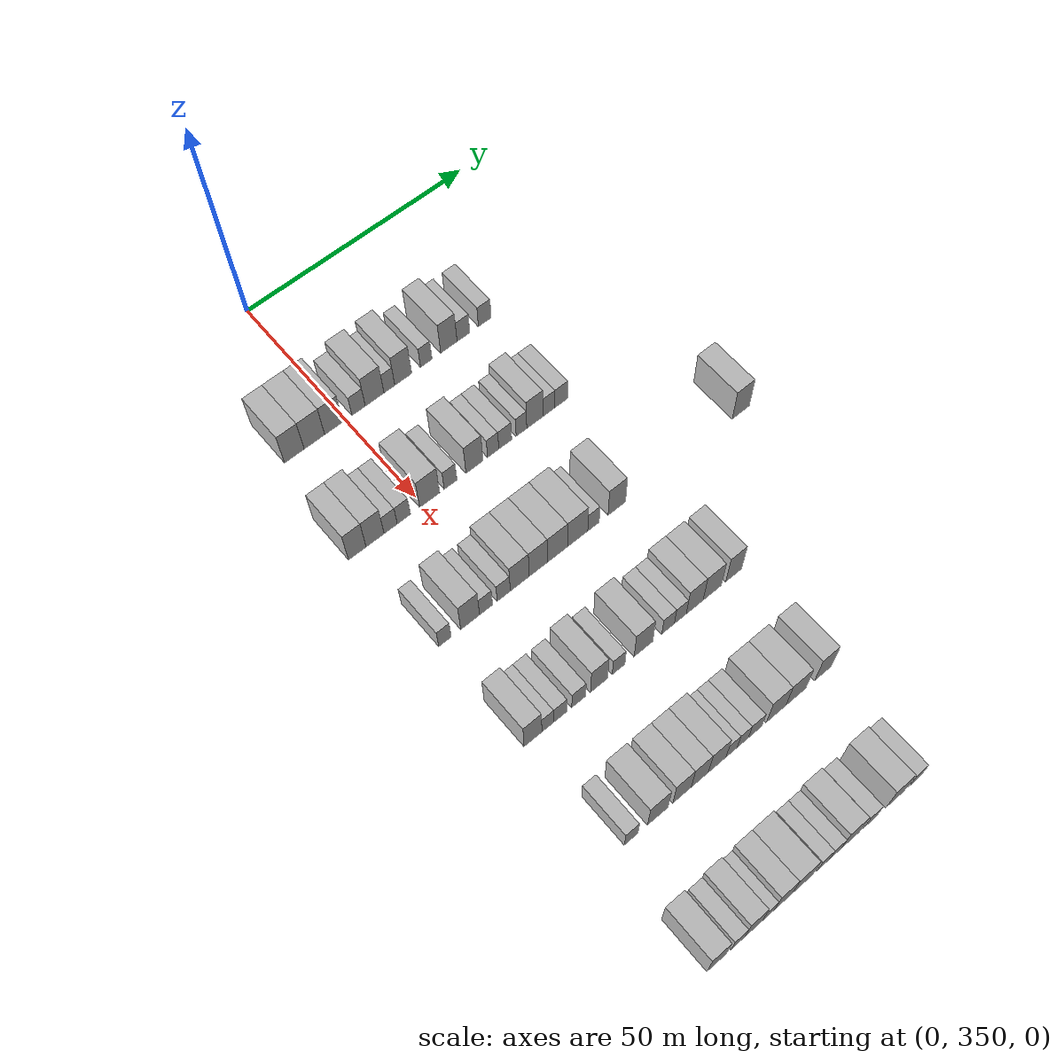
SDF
<sdf version="1.6">
 <world name="default">
  <model name="building_178">
   <static>1</static>
   <pose>25.0000 338.9166 0 0.000000 0.000000 0.000000</pose>
   <link name="link">
    <pose>0 0 4.50 0 0 0</pose>
    <collision name="collision"><geometry><box><size>10.0000 4.2122 9.0000</size></box></geometry></collision>
    <visual name="visual">
     <cast_shadows>0</cast_shadows>
     <geometry><box><size>10.0000 4.2122 9.0000</size></box></geometry>
     <material>
      <script>
       <uri>model://HANNAS_wall/materials/scripts</uri>
       <uri>model://HANNAS_wall/materials/textures</uri>
       <name>vrc/HANNAS_wall</name>
      </script>
     </material>
    </visual>
   </link>
  </model>
  <model name="building_179">
   <static>1</static>
   <pose>25.0000 343.2358 0 0.000000 0.000000 0.000000</pose>
   <link name="link">
    <pose>0 0 4.50 0 0 0</pose>
    <collision name="collision"><geometry><box><size>10.0000 4.4262 9.0000</size></box></geometry></collision>
    <visual name="visual">
     <cast_shadows>0</cast_shadows>
     <geometry><box><size>10.0000 4.4262 9.0000</size></box></geometry>
     <material>
      <script>
       <uri>model://HANNAS_wall/materials/scripts</uri>
       <uri>model://HANNAS_wall/materials/textures</uri>
       <name>vrc/HANNAS_wall</name>
      </script>
     </material>
    </visual>
   </link>
  </model>
  <model name="building_180">
   <static>1</static>
   <pose>25.0000 347.4312 0 0.000000 0.000000 0.000000</pose>
   <link name="link">
    <pose>0 0 4.50 0 0 0</pose>
    <collision name="collision"><geometry><box><size>10.0000 3.9647 9.0000</size></box></geometry></collision>
    <visual name="visual">
     <cast_shadows>0</cast_shadows>
     <geometry><box><size>10.0000 3.9647 9.0000</size></box></geometry>
     <material>
      <script>
       <uri>model://HANNAS_wall/materials/scripts</uri>
       <uri>model://HANNAS_wall/materials/textures</uri>
       <name>vrc/HANNAS_wall</name>
      </script>
     </material>
    </visual>
   </link>
  </model>
  <model name="building_181">
   <static>1</static>
   <pose>25.0000 352.8886 0 0.000000 0.000000 0.000000</pose>
   <link name="link">
    <pose>0 0 3.00 0 0 0</pose>
    <collision name="collision"><geometry><box><size>10.0000 2.9501 6.0000</size></box></geometry></collision>
    <visual name="visual">
     <cast_shadows>0</cast_shadows>
     <geometry><box><size>10.0000 2.9501 6.0000</size></box></geometry>
     <material>
      <script>
       <uri>model://HANNAS_wall/materials/scripts</uri>
       <uri>model://HANNAS_wall/materials/textures</uri>
       <name>vrc/HANNAS_wall</name>
      </script>
     </material>
    </visual>
   </link>
  </model>
  <model name="building_182">
   <static>1</static>
   <pose>25.0000 356.4411 0 0.000000 0.000000 0.000000</pose>
   <link name="link">
    <pose>0 0 4.50 0 0 0</pose>
    <collision name="collision"><geometry><box><size>10.0000 4.1549 9.0000</size></box></geometry></collision>
    <visual name="visual">
     <cast_shadows>0</cast_shadows>
     <geometry><box><size>10.0000 4.1549 9.0000</size></box></geometry>
     <material>
      <script>
       <uri>model://HANNAS_wall/materials/scripts</uri>
       <uri>model://HANNAS_wall/materials/textures</uri>
       <name>vrc/HANNAS_wall</name>
      </script>
     </material>
    </visual>
   </link>
  </model>
  <model name="building_183">
   <static>1</static>
   <pose>25.0000 359.7363 0 0.000000 0.000000 0.000000</pose>
   <link name="link">
    <pose>0 0 3.00 0 0 0</pose>
    <collision name="collision"><geometry><box><size>10.0000 2.4354 6.0000</size></box></geometry></collision>
    <visual name="visual">
     <cast_shadows>0</cast_shadows>
     <geometry><box><size>10.0000 2.4354 6.0000</size></box></geometry>
     <material>
      <script>
       <uri>model://HANNAS_wall/materials/scripts</uri>
       <uri>model://HANNAS_wall/materials/textures</uri>
       <name>vrc/HANNAS_wall</name>
      </script>
     </material>
    </visual>
   </link>
  </model>
  <model name="building_184">
   <static>1</static>
   <pose>25.0000 362.8602 0 0.000000 0.000000 0.000000</pose>
   <link name="link">
    <pose>0 0 4.50 0 0 0</pose>
    <collision name="collision"><geometry><box><size>10.0000 3.8124 9.0000</size></box></geometry></collision>
    <visual name="visual">
     <cast_shadows>0</cast_shadows>
     <geometry><box><size>10.0000 3.8124 9.0000</size></box></geometry>
     <material>
      <script>
       <uri>model://HANNAS_wall/materials/scripts</uri>
       <uri>model://HANNAS_wall/materials/textures</uri>
       <name>vrc/HANNAS_wall</name>
      </script>
     </material>
    </visual>
   </link>
  </model>
  <model name="building_185">
   <static>1</static>
   <pose>25.0000 368.0725 0 0.000000 0.000000 0.000000</pose>
   <link name="link">
    <pose>0 0 3.00 0 0 0</pose>
    <collision name="collision"><geometry><box><size>10.0000 2.6123 6.0000</size></box></geometry></collision>
    <visual name="visual">
     <cast_shadows>0</cast_shadows>
     <geometry><box><size>10.0000 2.6123 6.0000</size></box></geometry>
     <material>
      <script>
       <uri>model://HANNAS_wall/materials/scripts</uri>
       <uri>model://HANNAS_wall/materials/textures</uri>
       <name>vrc/HANNAS_wall</name>
      </script>
     </material>
    </visual>
   </link>
  </model>
  <model name="building_186">
   <static>1</static>
   <pose>25.0000 373.2752 0 0.000000 0.000000 0.000000</pose>
   <link name="link">
    <pose>0 0 4.50 0 0 0</pose>
    <collision name="collision"><geometry><box><size>10.0000 3.7930 9.0000</size></box></geometry></collision>
    <visual name="visual">
     <cast_shadows>0</cast_shadows>
     <geometry><box><size>10.0000 3.7930 9.0000</size></box></geometry>
     <material>
      <script>
       <uri>model://HANNAS_wall/materials/scripts</uri>
       <uri>model://HANNAS_wall/materials/textures</uri>
       <name>vrc/HANNAS_wall</name>
      </script>
     </material>
    </visual>
   </link>
  </model>
  <model name="building_187">
   <static>1</static>
   <pose>25.0000 376.6442 0 0.000000 0.000000 0.000000</pose>
   <link name="link">
    <pose>0 0 3.00 0 0 0</pose>
    <collision name="collision"><geometry><box><size>10.0000 2.9451 6.0000</size></box></geometry></collision>
    <visual name="visual">
     <cast_shadows>0</cast_shadows>
     <geometry><box><size>10.0000 2.9451 6.0000</size></box></geometry>
     <material>
      <script>
       <uri>model://HANNAS_wall/materials/scripts</uri>
       <uri>model://HANNAS_wall/materials/textures</uri>
       <name>vrc/HANNAS_wall</name>
      </script>
     </material>
    </visual>
   </link>
  </model>
  <model name="building_188">
   <static>1</static>
   <pose>25.0000 381.6117 0 0.000000 0.000000 0.000000</pose>
   <link name="link">
    <pose>0 0 3.00 0 0 0</pose>
    <collision name="collision"><geometry><box><size>10.0000 2.9899 6.0000</size></box></geometry></collision>
    <visual name="visual">
     <cast_shadows>0</cast_shadows>
     <geometry><box><size>10.0000 2.9899 6.0000</size></box></geometry>
     <material>
      <script>
       <uri>model://HANNAS_wall/materials/scripts</uri>
       <uri>model://HANNAS_wall/materials/textures</uri>
       <name>vrc/HANNAS_wall</name>
      </script>
     </material>
    </visual>
   </link>
  </model>
  <model name="building_356">
   <static>1</static>
   <pose>47.0000 336.0491 0 0.000000 0.000000 0.000000</pose>
   <link name="link">
    <pose>0 0 4.50 0 0 0</pose>
    <collision name="collision"><geometry><box><size>10.0000 3.7112 9.0000</size></box></geometry></collision>
    <visual name="visual">
     <cast_shadows>0</cast_shadows>
     <geometry><box><size>10.0000 3.7112 9.0000</size></box></geometry>
     <material>
      <script>
       <uri>model://HANNAS_wall/materials/scripts</uri>
       <uri>model://HANNAS_wall/materials/textures</uri>
       <name>vrc/HANNAS_wall</name>
      </script>
     </material>
    </visual>
   </link>
  </model>
  <model name="building_357">
   <static>1</static>
   <pose>47.0000 339.8124 0 0.000000 0.000000 0.000000</pose>
   <link name="link">
    <pose>0 0 4.50 0 0 0</pose>
    <collision name="collision"><geometry><box><size>10.0000 3.8154 9.0000</size></box></geometry></collision>
    <visual name="visual">
     <cast_shadows>0</cast_shadows>
     <geometry><box><size>10.0000 3.8154 9.0000</size></box></geometry>
     <material>
      <script>
       <uri>model://HANNAS_wall/materials/scripts</uri>
       <uri>model://HANNAS_wall/materials/textures</uri>
       <name>vrc/HANNAS_wall</name>
      </script>
     </material>
    </visual>
   </link>
  </model>
  <model name="building_358">
   <static>1</static>
   <pose>47.0000 343.1303 0 0.000000 0.000000 0.000000</pose>
   <link name="link">
    <pose>0 0 3.00 0 0 0</pose>
    <collision name="collision"><geometry><box><size>10.0000 2.8204 6.0000</size></box></geometry></collision>
    <visual name="visual">
     <cast_shadows>0</cast_shadows>
     <geometry><box><size>10.0000 2.8204 6.0000</size></box></geometry>
     <material>
      <script>
       <uri>model://HANNAS_wall/materials/scripts</uri>
       <uri>model://HANNAS_wall/materials/textures</uri>
       <name>vrc/HANNAS_wall</name>
      </script>
     </material>
    </visual>
   </link>
  </model>
  <model name="building_359">
   <static>1</static>
   <pose>47.0000 345.9557 0 0.000000 0.000000 0.000000</pose>
   <link name="link">
    <pose>0 0 3.00 0 0 0</pose>
    <collision name="collision"><geometry><box><size>10.0000 2.8305 6.0000</size></box></geometry></collision>
    <visual name="visual">
     <cast_shadows>0</cast_shadows>
     <geometry><box><size>10.0000 2.8305 6.0000</size></box></geometry>
     <material>
      <script>
       <uri>model://HANNAS_wall/materials/scripts</uri>
       <uri>model://HANNAS_wall/materials/textures</uri>
       <name>vrc/HANNAS_wall</name>
      </script>
     </material>
    </visual>
   </link>
  </model>
  <model name="building_360">
   <static>1</static>
   <pose>47.0000 351.5461 0 0.000000 0.000000 0.000000</pose>
   <link name="link">
    <pose>0 0 4.50 0 0 0</pose>
    <collision name="collision"><geometry><box><size>10.0000 4.3503 9.0000</size></box></geometry></collision>
    <visual name="visual">
     <cast_shadows>0</cast_shadows>
     <geometry><box><size>10.0000 4.3503 9.0000</size></box></geometry>
     <material>
      <script>
       <uri>model://HANNAS_wall/materials/scripts</uri>
       <uri>model://HANNAS_wall/materials/textures</uri>
       <name>vrc/HANNAS_wall</name>
      </script>
     </material>
    </visual>
   </link>
  </model>
  <model name="building_361">
   <static>1</static>
   <pose>47.0000 356.1222 0 0.000000 0.000000 0.000000</pose>
   <link name="link">
    <pose>0 0 3.00 0 0 0</pose>
    <collision name="collision"><geometry><box><size>10.0000 2.8019 6.0000</size></box></geometry></collision>
    <visual name="visual">
     <cast_shadows>0</cast_shadows>
     <geometry><box><size>10.0000 2.8019 6.0000</size></box></geometry>
     <material>
      <script>
       <uri>model://HANNAS_wall/materials/scripts</uri>
       <uri>model://HANNAS_wall/materials/textures</uri>
       <name>vrc/HANNAS_wall</name>
      </script>
     </material>
    </visual>
   </link>
  </model>
  <model name="building_362">
   <static>1</static>
   <pose>47.0000 361.4296 0 0.000000 0.000000 0.000000</pose>
   <link name="link">
    <pose>0 0 4.50 0 0 0</pose>
    <collision name="collision"><geometry><box><size>10.0000 3.8129 9.0000</size></box></geometry></collision>
    <visual name="visual">
     <cast_shadows>0</cast_shadows>
     <geometry><box><size>10.0000 3.8129 9.0000</size></box></geometry>
     <material>
      <script>
       <uri>model://HANNAS_wall/materials/scripts</uri>
       <uri>model://HANNAS_wall/materials/textures</uri>
       <name>vrc/HANNAS_wall</name>
      </script>
     </material>
    </visual>
   </link>
  </model>
  <model name="building_363">
   <static>1</static>
   <pose>47.0000 365.6028 0 0.000000 0.000000 0.000000</pose>
   <link name="link">
    <pose>0 0 3.00 0 0 0</pose>
    <collision name="collision"><geometry><box><size>10.0000 2.5336 6.0000</size></box></geometry></collision>
    <visual name="visual">
     <cast_shadows>0</cast_shadows>
     <geometry><box><size>10.0000 2.5336 6.0000</size></box></geometry>
     <material>
      <script>
       <uri>model://HANNAS_wall/materials/scripts</uri>
       <uri>model://HANNAS_wall/materials/textures</uri>
       <name>vrc/HANNAS_wall</name>
      </script>
     </material>
    </visual>
   </link>
  </model>
  <model name="building_364">
   <static>1</static>
   <pose>47.0000 368.3241 0 0.000000 0.000000 0.000000</pose>
   <link name="link">
    <pose>0 0 3.00 0 0 0</pose>
    <collision name="collision"><geometry><box><size>10.0000 2.9088 6.0000</size></box></geometry></collision>
    <visual name="visual">
     <cast_shadows>0</cast_shadows>
     <geometry><box><size>10.0000 2.9088 6.0000</size></box></geometry>
     <material>
      <script>
       <uri>model://HANNAS_wall/materials/scripts</uri>
       <uri>model://HANNAS_wall/materials/textures</uri>
       <name>vrc/HANNAS_wall</name>
      </script>
     </material>
    </visual>
   </link>
  </model>
  <model name="building_365">
   <static>1</static>
   <pose>47.0000 371.9936 0 0.000000 0.000000 0.000000</pose>
   <link name="link">
    <pose>0 0 3.00 0 0 0</pose>
    <collision name="collision"><geometry><box><size>10.0000 2.4302 6.0000</size></box></geometry></collision>
    <visual name="visual">
     <cast_shadows>0</cast_shadows>
     <geometry><box><size>10.0000 2.4302 6.0000</size></box></geometry>
     <material>
      <script>
       <uri>model://HANNAS_wall/materials/scripts</uri>
       <uri>model://HANNAS_wall/materials/textures</uri>
       <name>vrc/HANNAS_wall</name>
      </script>
     </material>
    </visual>
   </link>
  </model>
  <model name="building_366">
   <static>1</static>
   <pose>47.0000 375.0825 0 0.000000 0.000000 0.000000</pose>
   <link name="link">
    <pose>0 0 4.50 0 0 0</pose>
    <collision name="collision"><geometry><box><size>10.0000 3.7476 9.0000</size></box></geometry></collision>
    <visual name="visual">
     <cast_shadows>0</cast_shadows>
     <geometry><box><size>10.0000 3.7476 9.0000</size></box></geometry>
     <material>
      <script>
       <uri>model://HANNAS_wall/materials/scripts</uri>
       <uri>model://HANNAS_wall/materials/textures</uri>
       <name>vrc/HANNAS_wall</name>
      </script>
     </material>
    </visual>
   </link>
  </model>
  <model name="building_367">
   <static>1</static>
   <pose>47.0000 378.3202 0 0.000000 0.000000 0.000000</pose>
   <link name="link">
    <pose>0 0 3.00 0 0 0</pose>
    <collision name="collision"><geometry><box><size>10.0000 2.7280 6.0000</size></box></geometry></collision>
    <visual name="visual">
     <cast_shadows>0</cast_shadows>
     <geometry><box><size>10.0000 2.7280 6.0000</size></box></geometry>
     <material>
      <script>
       <uri>model://HANNAS_wall/materials/scripts</uri>
       <uri>model://HANNAS_wall/materials/textures</uri>
       <name>vrc/HANNAS_wall</name>
      </script>
     </material>
    </visual>
   </link>
  </model>
  <model name="building_368">
   <static>1</static>
   <pose>47.0000 381.1518 0 0.000000 0.000000 0.000000</pose>
   <link name="link">
    <pose>0 0 3.00 0 0 0</pose>
    <collision name="collision"><geometry><box><size>10.0000 2.9352 6.0000</size></box></geometry></collision>
    <visual name="visual">
     <cast_shadows>0</cast_shadows>
     <geometry><box><size>10.0000 2.9352 6.0000</size></box></geometry>
     <material>
      <script>
       <uri>model://HANNAS_wall/materials/scripts</uri>
       <uri>model://HANNAS_wall/materials/textures</uri>
       <name>vrc/HANNAS_wall</name>
      </script>
     </material>
    </visual>
   </link>
  </model>
  <model name="building_543">
   <static>1</static>
   <pose>69.0000 337.4171 0 0.000000 0.000000 0.000000</pose>
   <link name="link">
    <pose>0 0 3.00 0 0 0</pose>
    <collision name="collision"><geometry><box><size>10.0000 2.6005 6.0000</size></box></geometry></collision>
    <visual name="visual">
     <cast_shadows>0</cast_shadows>
     <geometry><box><size>10.0000 2.6005 6.0000</size></box></geometry>
     <material>
      <script>
       <uri>model://HANNAS_wall/materials/scripts</uri>
       <uri>model://HANNAS_wall/materials/textures</uri>
       <name>vrc/HANNAS_wall</name>
      </script>
     </material>
    </visual>
   </link>
  </model>
  <model name="building_544">
   <static>1</static>
   <pose>69.0000 342.7054 0 0.000000 0.000000 0.000000</pose>
   <link name="link">
    <pose>0 0 4.50 0 0 0</pose>
    <collision name="collision"><geometry><box><size>10.0000 3.9762 9.0000</size></box></geometry></collision>
    <visual name="visual">
     <cast_shadows>0</cast_shadows>
     <geometry><box><size>10.0000 3.9762 9.0000</size></box></geometry>
     <material>
      <script>
       <uri>model://HANNAS_wall/materials/scripts</uri>
       <uri>model://HANNAS_wall/materials/textures</uri>
       <name>vrc/HANNAS_wall</name>
      </script>
     </material>
    </visual>
   </link>
  </model>
  <model name="building_545">
   <static>1</static>
   <pose>69.0000 346.0716 0 0.000000 0.000000 0.000000</pose>
   <link name="link">
    <pose>0 0 3.00 0 0 0</pose>
    <collision name="collision"><geometry><box><size>10.0000 2.7561 6.0000</size></box></geometry></collision>
    <visual name="visual">
     <cast_shadows>0</cast_shadows>
     <geometry><box><size>10.0000 2.7561 6.0000</size></box></geometry>
     <material>
      <script>
       <uri>model://HANNAS_wall/materials/scripts</uri>
       <uri>model://HANNAS_wall/materials/textures</uri>
       <name>vrc/HANNAS_wall</name>
      </script>
     </material>
    </visual>
   </link>
  </model>
  <model name="building_546">
   <static>1</static>
   <pose>69.0000 349.8646 0 0.000000 0.000000 0.000000</pose>
   <link name="link">
    <pose>0 0 3.00 0 0 0</pose>
    <collision name="collision"><geometry><box><size>10.0000 2.8299 6.0000</size></box></geometry></collision>
    <visual name="visual">
     <cast_shadows>0</cast_shadows>
     <geometry><box><size>10.0000 2.8299 6.0000</size></box></geometry>
     <material>
      <script>
       <uri>model://HANNAS_wall/materials/scripts</uri>
       <uri>model://HANNAS_wall/materials/textures</uri>
       <name>vrc/HANNAS_wall</name>
      </script>
     </material>
    </visual>
   </link>
  </model>
  <model name="building_547">
   <static>1</static>
   <pose>69.0000 353.3275 0 0.000000 0.000000 0.000000</pose>
   <link name="link">
    <pose>0 0 4.50 0 0 0</pose>
    <collision name="collision"><geometry><box><size>10.0000 4.0960 9.0000</size></box></geometry></collision>
    <visual name="visual">
     <cast_shadows>0</cast_shadows>
     <geometry><box><size>10.0000 4.0960 9.0000</size></box></geometry>
     <material>
      <script>
       <uri>model://HANNAS_wall/materials/scripts</uri>
       <uri>model://HANNAS_wall/materials/textures</uri>
       <name>vrc/HANNAS_wall</name>
      </script>
     </material>
    </visual>
   </link>
  </model>
  <model name="building_548">
   <static>1</static>
   <pose>69.0000 357.4074 0 0.000000 0.000000 0.000000</pose>
   <link name="link">
    <pose>0 0 4.50 0 0 0</pose>
    <collision name="collision"><geometry><box><size>10.0000 4.0638 9.0000</size></box></geometry></collision>
    <visual name="visual">
     <cast_shadows>0</cast_shadows>
     <geometry><box><size>10.0000 4.0638 9.0000</size></box></geometry>
     <material>
      <script>
       <uri>model://HANNAS_wall/materials/scripts</uri>
       <uri>model://HANNAS_wall/materials/textures</uri>
       <name>vrc/HANNAS_wall</name>
      </script>
     </material>
    </visual>
   </link>
  </model>
  <model name="building_549">
   <static>1</static>
   <pose>69.0000 361.6377 0 0.000000 0.000000 0.000000</pose>
   <link name="link">
    <pose>0 0 4.50 0 0 0</pose>
    <collision name="collision"><geometry><box><size>10.0000 4.3967 9.0000</size></box></geometry></collision>
    <visual name="visual">
     <cast_shadows>0</cast_shadows>
     <geometry><box><size>10.0000 4.3967 9.0000</size></box></geometry>
     <material>
      <script>
       <uri>model://HANNAS_wall/materials/scripts</uri>
       <uri>model://HANNAS_wall/materials/textures</uri>
       <name>vrc/HANNAS_wall</name>
      </script>
     </material>
    </visual>
   </link>
  </model>
  <model name="building_550">
   <static>1</static>
   <pose>69.0000 366.0727 0 0.000000 0.000000 0.000000</pose>
   <link name="link">
    <pose>0 0 4.50 0 0 0</pose>
    <collision name="collision"><geometry><box><size>10.0000 4.4732 9.0000</size></box></geometry></collision>
    <visual name="visual">
     <cast_shadows>0</cast_shadows>
     <geometry><box><size>10.0000 4.4732 9.0000</size></box></geometry>
     <material>
      <script>
       <uri>model://HANNAS_wall/materials/scripts</uri>
       <uri>model://HANNAS_wall/materials/textures</uri>
       <name>vrc/HANNAS_wall</name>
      </script>
     </material>
    </visual>
   </link>
  </model>
  <model name="building_551">
   <static>1</static>
   <pose>69.0000 369.5935 0 0.000000 0.000000 0.000000</pose>
   <link name="link">
    <pose>0 0 3.00 0 0 0</pose>
    <collision name="collision"><geometry><box><size>10.0000 2.5682 6.0000</size></box></geometry></collision>
    <visual name="visual">
     <cast_shadows>0</cast_shadows>
     <geometry><box><size>10.0000 2.5682 6.0000</size></box></geometry>
     <material>
      <script>
       <uri>model://HANNAS_wall/materials/scripts</uri>
       <uri>model://HANNAS_wall/materials/textures</uri>
       <name>vrc/HANNAS_wall</name>
      </script>
     </material>
    </visual>
   </link>
  </model>
  <model name="building_552">
   <static>1</static>
   <pose>69.0000 374.8669 0 0.000000 0.000000 0.000000</pose>
   <link name="link">
    <pose>0 0 4.50 0 0 0</pose>
    <collision name="collision"><geometry><box><size>10.0000 3.9787 9.0000</size></box></geometry></collision>
    <visual name="visual">
     <cast_shadows>0</cast_shadows>
     <geometry><box><size>10.0000 3.9787 9.0000</size></box></geometry>
     <material>
      <script>
       <uri>model://HANNAS_wall/materials/scripts</uri>
       <uri>model://HANNAS_wall/materials/textures</uri>
       <name>vrc/HANNAS_wall</name>
      </script>
     </material>
    </visual>
   </link>
  </model>
  <model name="building_553">
   <static>1</static>
   <pose>69.0000 404.0630 0 0.000000 0.000000 0.000000</pose>
   <link name="link">
    <pose>0 0 4.50 0 0 0</pose>
    <collision name="collision"><geometry><box><size>10.0000 4.1378 9.0000</size></box></geometry></collision>
    <visual name="visual">
     <cast_shadows>0</cast_shadows>
     <geometry><box><size>10.0000 4.1378 9.0000</size></box></geometry>
     <material>
      <script>
       <uri>model://HANNAS_wall/materials/scripts</uri>
       <uri>model://HANNAS_wall/materials/textures</uri>
       <name>vrc/HANNAS_wall</name>
      </script>
     </material>
    </visual>
   </link>
  </model>
  <model name="building_742">
   <static>1</static>
   <pose>91.0000 337.7596 0 0.000000 0.000000 0.000000</pose>
   <link name="link">
    <pose>0 0 4.50 0 0 0</pose>
    <collision name="collision"><geometry><box><size>10.0000 3.6984 9.0000</size></box></geometry></collision>
    <visual name="visual">
     <cast_shadows>0</cast_shadows>
     <geometry><box><size>10.0000 3.6984 9.0000</size></box></geometry>
     <material>
      <script>
       <uri>model://HANNAS_wall/materials/scripts</uri>
       <uri>model://HANNAS_wall/materials/textures</uri>
       <name>vrc/HANNAS_wall</name>
      </script>
     </material>
    </visual>
   </link>
  </model>
  <model name="building_743">
   <static>1</static>
   <pose>91.0000 340.8476 0 0.000000 0.000000 0.000000</pose>
   <link name="link">
    <pose>0 0 3.00 0 0 0</pose>
    <collision name="collision"><geometry><box><size>10.0000 2.4774 6.0000</size></box></geometry></collision>
    <visual name="visual">
     <cast_shadows>0</cast_shadows>
     <geometry><box><size>10.0000 2.4774 6.0000</size></box></geometry>
     <material>
      <script>
       <uri>model://HANNAS_wall/materials/scripts</uri>
       <uri>model://HANNAS_wall/materials/textures</uri>
       <name>vrc/HANNAS_wall</name>
      </script>
     </material>
    </visual>
   </link>
  </model>
  <model name="building_744">
   <static>1</static>
   <pose>91.0000 343.4697 0 0.000000 0.000000 0.000000</pose>
   <link name="link">
    <pose>0 0 3.00 0 0 0</pose>
    <collision name="collision"><geometry><box><size>10.0000 2.7669 6.0000</size></box></geometry></collision>
    <visual name="visual">
     <cast_shadows>0</cast_shadows>
     <geometry><box><size>10.0000 2.7669 6.0000</size></box></geometry>
     <material>
      <script>
       <uri>model://HANNAS_wall/materials/scripts</uri>
       <uri>model://HANNAS_wall/materials/textures</uri>
       <name>vrc/HANNAS_wall</name>
      </script>
     </material>
    </visual>
   </link>
  </model>
  <model name="building_745">
   <static>1</static>
   <pose>91.0000 347.3351 0 0.000000 0.000000 0.000000</pose>
   <link name="link">
    <pose>0 0 3.00 0 0 0</pose>
    <collision name="collision"><geometry><box><size>10.0000 2.9640 6.0000</size></box></geometry></collision>
    <visual name="visual">
     <cast_shadows>0</cast_shadows>
     <geometry><box><size>10.0000 2.9640 6.0000</size></box></geometry>
     <material>
      <script>
       <uri>model://HANNAS_wall/materials/scripts</uri>
       <uri>model://HANNAS_wall/materials/textures</uri>
       <name>vrc/HANNAS_wall</name>
      </script>
     </material>
    </visual>
   </link>
  </model>
  <model name="building_746">
   <static>1</static>
   <pose>91.0000 351.6450 0 0.000000 0.000000 0.000000</pose>
   <link name="link">
    <pose>0 0 4.50 0 0 0</pose>
    <collision name="collision"><geometry><box><size>10.0000 3.6558 9.0000</size></box></geometry></collision>
    <visual name="visual">
     <cast_shadows>0</cast_shadows>
     <geometry><box><size>10.0000 3.6558 9.0000</size></box></geometry>
     <material>
      <script>
       <uri>model://HANNAS_wall/materials/scripts</uri>
       <uri>model://HANNAS_wall/materials/textures</uri>
       <name>vrc/HANNAS_wall</name>
      </script>
     </material>
    </visual>
   </link>
  </model>
  <model name="building_747">
   <static>1</static>
   <pose>91.0000 355.8470 0 0.000000 0.000000 0.000000</pose>
   <link name="link">
    <pose>0 0 3.00 0 0 0</pose>
    <collision name="collision"><geometry><box><size>10.0000 2.7481 6.0000</size></box></geometry></collision>
    <visual name="visual">
     <cast_shadows>0</cast_shadows>
     <geometry><box><size>10.0000 2.7481 6.0000</size></box></geometry>
     <material>
      <script>
       <uri>model://HANNAS_wall/materials/scripts</uri>
       <uri>model://HANNAS_wall/materials/textures</uri>
       <name>vrc/HANNAS_wall</name>
      </script>
     </material>
    </visual>
   </link>
  </model>
  <model name="building_748">
   <static>1</static>
   <pose>91.0000 361.2587 0 0.000000 0.000000 0.000000</pose>
   <link name="link">
    <pose>0 0 4.50 0 0 0</pose>
    <collision name="collision"><geometry><box><size>10.0000 4.0752 9.0000</size></box></geometry></collision>
    <visual name="visual">
     <cast_shadows>0</cast_shadows>
     <geometry><box><size>10.0000 4.0752 9.0000</size></box></geometry>
     <material>
      <script>
       <uri>model://HANNAS_wall/materials/scripts</uri>
       <uri>model://HANNAS_wall/materials/textures</uri>
       <name>vrc/HANNAS_wall</name>
      </script>
     </material>
    </visual>
   </link>
  </model>
  <model name="building_749">
   <static>1</static>
   <pose>91.0000 366.6951 0 0.000000 0.000000 0.000000</pose>
   <link name="link">
    <pose>0 0 3.00 0 0 0</pose>
    <collision name="collision"><geometry><box><size>10.0000 2.7977 6.0000</size></box></geometry></collision>
    <visual name="visual">
     <cast_shadows>0</cast_shadows>
     <geometry><box><size>10.0000 2.7977 6.0000</size></box></geometry>
     <material>
      <script>
       <uri>model://HANNAS_wall/materials/scripts</uri>
       <uri>model://HANNAS_wall/materials/textures</uri>
       <name>vrc/HANNAS_wall</name>
      </script>
     </material>
    </visual>
   </link>
  </model>
  <model name="building_750">
   <static>1</static>
   <pose>91.0000 369.4198 0 0.000000 0.000000 0.000000</pose>
   <link name="link">
    <pose>0 0 3.00 0 0 0</pose>
    <collision name="collision"><geometry><box><size>10.0000 2.6517 6.0000</size></box></geometry></collision>
    <visual name="visual">
     <cast_shadows>0</cast_shadows>
     <geometry><box><size>10.0000 2.6517 6.0000</size></box></geometry>
     <material>
      <script>
       <uri>model://HANNAS_wall/materials/scripts</uri>
       <uri>model://HANNAS_wall/materials/textures</uri>
       <name>vrc/HANNAS_wall</name>
      </script>
     </material>
    </visual>
   </link>
  </model>
  <model name="building_751">
   <static>1</static>
   <pose>91.0000 372.6509 0 0.000000 0.000000 0.000000</pose>
   <link name="link">
    <pose>0 0 4.50 0 0 0</pose>
    <collision name="collision"><geometry><box><size>10.0000 3.8104 9.0000</size></box></geometry></collision>
    <visual name="visual">
     <cast_shadows>0</cast_shadows>
     <geometry><box><size>10.0000 3.8104 9.0000</size></box></geometry>
     <material>
      <script>
       <uri>model://HANNAS_wall/materials/scripts</uri>
       <uri>model://HANNAS_wall/materials/textures</uri>
       <name>vrc/HANNAS_wall</name>
      </script>
     </material>
    </visual>
   </link>
  </model>
  <model name="building_752">
   <static>1</static>
   <pose>91.0000 376.6346 0 0.000000 0.000000 0.000000</pose>
   <link name="link">
    <pose>0 0 4.50 0 0 0</pose>
    <collision name="collision"><geometry><box><size>10.0000 4.1571 9.0000</size></box></geometry></collision>
    <visual name="visual">
     <cast_shadows>0</cast_shadows>
     <geometry><box><size>10.0000 4.1571 9.0000</size></box></geometry>
     <material>
      <script>
       <uri>model://HANNAS_wall/materials/scripts</uri>
       <uri>model://HANNAS_wall/materials/textures</uri>
       <name>vrc/HANNAS_wall</name>
      </script>
     </material>
    </visual>
   </link>
  </model>
  <model name="building_753">
   <static>1</static>
   <pose>91.0000 381.5295 0 0.000000 0.000000 0.000000</pose>
   <link name="link">
    <pose>0 0 4.50 0 0 0</pose>
    <collision name="collision"><geometry><box><size>10.0000 3.6326 9.0000</size></box></geometry></collision>
    <visual name="visual">
     <cast_shadows>0</cast_shadows>
     <geometry><box><size>10.0000 3.6326 9.0000</size></box></geometry>
     <material>
      <script>
       <uri>model://HANNAS_wall/materials/scripts</uri>
       <uri>model://HANNAS_wall/materials/textures</uri>
       <name>vrc/HANNAS_wall</name>
      </script>
     </material>
    </visual>
   </link>
  </model>
  <model name="building_934">
   <static>1</static>
   <pose>113.0000 339.0216 0 0.000000 0.000000 0.000000</pose>
   <link name="link">
    <pose>0 0 3.00 0 0 0</pose>
    <collision name="collision"><geometry><box><size>10.0000 2.7682 6.0000</size></box></geometry></collision>
    <visual name="visual">
     <cast_shadows>0</cast_shadows>
     <geometry><box><size>10.0000 2.7682 6.0000</size></box></geometry>
     <material>
      <script>
       <uri>model://HANNAS_wall/materials/scripts</uri>
       <uri>model://HANNAS_wall/materials/textures</uri>
       <name>vrc/HANNAS_wall</name>
      </script>
     </material>
    </visual>
   </link>
  </model>
  <model name="building_935">
   <static>1</static>
   <pose>113.0000 344.5379 0 0.000000 0.000000 0.000000</pose>
   <link name="link">
    <pose>0 0 4.50 0 0 0</pose>
    <collision name="collision"><geometry><box><size>10.0000 4.2644 9.0000</size></box></geometry></collision>
    <visual name="visual">
     <cast_shadows>0</cast_shadows>
     <geometry><box><size>10.0000 4.2644 9.0000</size></box></geometry>
     <material>
      <script>
       <uri>model://HANNAS_wall/materials/scripts</uri>
       <uri>model://HANNAS_wall/materials/textures</uri>
       <name>vrc/HANNAS_wall</name>
      </script>
     </material>
    </visual>
   </link>
  </model>
  <model name="building_936">
   <static>1</static>
   <pose>113.0000 349.6160 0 0.000000 0.000000 0.000000</pose>
   <link name="link">
    <pose>0 0 4.50 0 0 0</pose>
    <collision name="collision"><geometry><box><size>10.0000 3.8919 9.0000</size></box></geometry></collision>
    <visual name="visual">
     <cast_shadows>0</cast_shadows>
     <geometry><box><size>10.0000 3.8919 9.0000</size></box></geometry>
     <material>
      <script>
       <uri>model://HANNAS_wall/materials/scripts</uri>
       <uri>model://HANNAS_wall/materials/textures</uri>
       <name>vrc/HANNAS_wall</name>
      </script>
     </material>
    </visual>
   </link>
  </model>
  <model name="building_937">
   <static>1</static>
   <pose>113.0000 353.3787 0 0.000000 0.000000 0.000000</pose>
   <link name="link">
    <pose>0 0 4.50 0 0 0</pose>
    <collision name="collision"><geometry><box><size>10.0000 3.6333 9.0000</size></box></geometry></collision>
    <visual name="visual">
     <cast_shadows>0</cast_shadows>
     <geometry><box><size>10.0000 3.6333 9.0000</size></box></geometry>
     <material>
      <script>
       <uri>model://HANNAS_wall/materials/scripts</uri>
       <uri>model://HANNAS_wall/materials/textures</uri>
       <name>vrc/HANNAS_wall</name>
      </script>
     </material>
    </visual>
   </link>
  </model>
  <model name="building_938">
   <static>1</static>
   <pose>113.0000 357.1189 0 0.000000 0.000000 0.000000</pose>
   <link name="link">
    <pose>0 0 4.50 0 0 0</pose>
    <collision name="collision"><geometry><box><size>10.0000 3.8470 9.0000</size></box></geometry></collision>
    <visual name="visual">
     <cast_shadows>0</cast_shadows>
     <geometry><box><size>10.0000 3.8470 9.0000</size></box></geometry>
     <material>
      <script>
       <uri>model://HANNAS_wall/materials/scripts</uri>
       <uri>model://HANNAS_wall/materials/textures</uri>
       <name>vrc/HANNAS_wall</name>
      </script>
     </material>
    </visual>
   </link>
  </model>
  <model name="building_939">
   <static>1</static>
   <pose>113.0000 360.2528 0 0.000000 0.000000 0.000000</pose>
   <link name="link">
    <pose>0 0 3.00 0 0 0</pose>
    <collision name="collision"><geometry><box><size>10.0000 2.4209 6.0000</size></box></geometry></collision>
    <visual name="visual">
     <cast_shadows>0</cast_shadows>
     <geometry><box><size>10.0000 2.4209 6.0000</size></box></geometry>
     <material>
      <script>
       <uri>model://HANNAS_wall/materials/scripts</uri>
       <uri>model://HANNAS_wall/materials/textures</uri>
       <name>vrc/HANNAS_wall</name>
      </script>
     </material>
    </visual>
   </link>
  </model>
  <model name="building_940">
   <static>1</static>
   <pose>113.0000 362.6819 0 0.000000 0.000000 0.000000</pose>
   <link name="link">
    <pose>0 0 3.00 0 0 0</pose>
    <collision name="collision"><geometry><box><size>10.0000 2.4373 6.0000</size></box></geometry></collision>
    <visual name="visual">
     <cast_shadows>0</cast_shadows>
     <geometry><box><size>10.0000 2.4373 6.0000</size></box></geometry>
     <material>
      <script>
       <uri>model://HANNAS_wall/materials/scripts</uri>
       <uri>model://HANNAS_wall/materials/textures</uri>
       <name>vrc/HANNAS_wall</name>
      </script>
     </material>
    </visual>
   </link>
  </model>
  <model name="building_941">
   <static>1</static>
   <pose>113.0000 365.3845 0 0.000000 0.000000 0.000000</pose>
   <link name="link">
    <pose>0 0 3.00 0 0 0</pose>
    <collision name="collision"><geometry><box><size>10.0000 2.9679 6.0000</size></box></geometry></collision>
    <visual name="visual">
     <cast_shadows>0</cast_shadows>
     <geometry><box><size>10.0000 2.9679 6.0000</size></box></geometry>
     <material>
      <script>
       <uri>model://HANNAS_wall/materials/scripts</uri>
       <uri>model://HANNAS_wall/materials/textures</uri>
       <name>vrc/HANNAS_wall</name>
      </script>
     </material>
    </visual>
   </link>
  </model>
  <model name="building_942">
   <static>1</static>
   <pose>113.0000 370.0374 0 0.000000 0.000000 0.000000</pose>
   <link name="link">
    <pose>0 0 4.50 0 0 0</pose>
    <collision name="collision"><geometry><box><size>10.0000 4.3378 9.0000</size></box></geometry></collision>
    <visual name="visual">
     <cast_shadows>0</cast_shadows>
     <geometry><box><size>10.0000 4.3378 9.0000</size></box></geometry>
     <material>
      <script>
       <uri>model://HANNAS_wall/materials/scripts</uri>
       <uri>model://HANNAS_wall/materials/textures</uri>
       <name>vrc/HANNAS_wall</name>
      </script>
     </material>
    </visual>
   </link>
  </model>
  <model name="building_943">
   <static>1</static>
   <pose>113.0000 374.4398 0 0.000000 0.000000 0.000000</pose>
   <link name="link">
    <pose>0 0 4.50 0 0 0</pose>
    <collision name="collision"><geometry><box><size>10.0000 4.4670 9.0000</size></box></geometry></collision>
    <visual name="visual">
     <cast_shadows>0</cast_shadows>
     <geometry><box><size>10.0000 4.4670 9.0000</size></box></geometry>
     <material>
      <script>
       <uri>model://HANNAS_wall/materials/scripts</uri>
       <uri>model://HANNAS_wall/materials/textures</uri>
       <name>vrc/HANNAS_wall</name>
      </script>
     </material>
    </visual>
   </link>
  </model>
  <model name="building_944">
   <static>1</static>
   <pose>113.0000 380.5920 0 0.000000 0.000000 0.000000</pose>
   <link name="link">
    <pose>0 0 4.50 0 0 0</pose>
    <collision name="collision"><geometry><box><size>10.0000 3.8373 9.0000</size></box></geometry></collision>
    <visual name="visual">
     <cast_shadows>0</cast_shadows>
     <geometry><box><size>10.0000 3.8373 9.0000</size></box></geometry>
     <material>
      <script>
       <uri>model://HANNAS_wall/materials/scripts</uri>
       <uri>model://HANNAS_wall/materials/textures</uri>
       <name>vrc/HANNAS_wall</name>
      </script>
     </material>
    </visual>
   </link>
  </model>
  <model name="building_1121">
   <static>1</static>
   <pose>135.0000 336.4339 0 0.000000 0.000000 0.000000</pose>
   <link name="link">
    <pose>0 0 4.50 0 0 0</pose>
    <collision name="collision"><geometry><box><size>10.0000 3.8829 9.0000</size></box></geometry></collision>
    <visual name="visual">
     <cast_shadows>0</cast_shadows>
     <geometry><box><size>10.0000 3.8829 9.0000</size></box></geometry>
     <material>
      <script>
       <uri>model://HANNAS_wall/materials/scripts</uri>
       <uri>model://HANNAS_wall/materials/textures</uri>
       <name>vrc/HANNAS_wall</name>
      </script>
     </material>
    </visual>
   </link>
  </model>
  <model name="building_1122">
   <static>1</static>
   <pose>135.0000 340.7741 0 0.000000 0.000000 0.000000</pose>
   <link name="link">
    <pose>0 0 3.00 0 0 0</pose>
    <collision name="collision"><geometry><box><size>10.0000 2.7976 6.0000</size></box></geometry></collision>
    <visual name="visual">
     <cast_shadows>0</cast_shadows>
     <geometry><box><size>10.0000 2.7976 6.0000</size></box></geometry>
     <material>
      <script>
       <uri>model://HANNAS_wall/materials/scripts</uri>
       <uri>model://HANNAS_wall/materials/textures</uri>
       <name>vrc/HANNAS_wall</name>
      </script>
     </material>
    </visual>
   </link>
  </model>
  <model name="building_1123">
   <static>1</static>
   <pose>135.0000 343.9733 0 0.000000 0.000000 0.000000</pose>
   <link name="link">
    <pose>0 0 4.50 0 0 0</pose>
    <collision name="collision"><geometry><box><size>10.0000 3.6009 9.0000</size></box></geometry></collision>
    <visual name="visual">
     <cast_shadows>0</cast_shadows>
     <geometry><box><size>10.0000 3.6009 9.0000</size></box></geometry>
     <material>
      <script>
       <uri>model://HANNAS_wall/materials/scripts</uri>
       <uri>model://HANNAS_wall/materials/textures</uri>
       <name>vrc/HANNAS_wall</name>
      </script>
     </material>
    </visual>
   </link>
  </model>
  <model name="building_1124">
   <static>1</static>
   <pose>135.0000 347.0413 0 0.000000 0.000000 0.000000</pose>
   <link name="link">
    <pose>0 0 3.00 0 0 0</pose>
    <collision name="collision"><geometry><box><size>10.0000 2.5351 6.0000</size></box></geometry></collision>
    <visual name="visual">
     <cast_shadows>0</cast_shadows>
     <geometry><box><size>10.0000 2.5351 6.0000</size></box></geometry>
     <material>
      <script>
       <uri>model://HANNAS_wall/materials/scripts</uri>
       <uri>model://HANNAS_wall/materials/textures</uri>
       <name>vrc/HANNAS_wall</name>
      </script>
     </material>
    </visual>
   </link>
  </model>
  <model name="building_1125">
   <static>1</static>
   <pose>135.0000 350.1367 0 0.000000 0.000000 0.000000</pose>
   <link name="link">
    <pose>0 0 4.50 0 0 0</pose>
    <collision name="collision"><geometry><box><size>10.0000 3.6556 9.0000</size></box></geometry></collision>
    <visual name="visual">
     <cast_shadows>0</cast_shadows>
     <geometry><box><size>10.0000 3.6556 9.0000</size></box></geometry>
     <material>
      <script>
       <uri>model://HANNAS_wall/materials/scripts</uri>
       <uri>model://HANNAS_wall/materials/textures</uri>
       <name>vrc/HANNAS_wall</name>
      </script>
     </material>
    </visual>
   </link>
  </model>
  <model name="building_1126">
   <static>1</static>
   <pose>135.0000 354.1667 0 0.000000 0.000000 0.000000</pose>
   <link name="link">
    <pose>0 0 4.50 0 0 0</pose>
    <collision name="collision"><geometry><box><size>10.0000 4.4044 9.0000</size></box></geometry></collision>
    <visual name="visual">
     <cast_shadows>0</cast_shadows>
     <geometry><box><size>10.0000 4.4044 9.0000</size></box></geometry>
     <material>
      <script>
       <uri>model://HANNAS_wall/materials/scripts</uri>
       <uri>model://HANNAS_wall/materials/textures</uri>
       <name>vrc/HANNAS_wall</name>
      </script>
     </material>
    </visual>
   </link>
  </model>
  <model name="building_1127">
   <static>1</static>
   <pose>135.0000 358.6764 0 0.000000 0.000000 0.000000</pose>
   <link name="link">
    <pose>0 0 3.00 0 0 0</pose>
    <collision name="collision"><geometry><box><size>10.0000 2.6151 6.0000</size></box></geometry></collision>
    <visual name="visual">
     <cast_shadows>0</cast_shadows>
     <geometry><box><size>10.0000 2.6151 6.0000</size></box></geometry>
     <material>
      <script>
       <uri>model://HANNAS_wall/materials/scripts</uri>
       <uri>model://HANNAS_wall/materials/textures</uri>
       <name>vrc/HANNAS_wall</name>
      </script>
     </material>
    </visual>
   </link>
  </model>
  <model name="building_1128">
   <static>1</static>
   <pose>135.0000 361.2607 0 0.000000 0.000000 0.000000</pose>
   <link name="link">
    <pose>0 0 3.00 0 0 0</pose>
    <collision name="collision"><geometry><box><size>10.0000 2.5535 6.0000</size></box></geometry></collision>
    <visual name="visual">
     <cast_shadows>0</cast_shadows>
     <geometry><box><size>10.0000 2.5535 6.0000</size></box></geometry>
     <material>
      <script>
       <uri>model://HANNAS_wall/materials/scripts</uri>
       <uri>model://HANNAS_wall/materials/textures</uri>
       <name>vrc/HANNAS_wall</name>
      </script>
     </material>
    </visual>
   </link>
  </model>
  <model name="building_1129">
   <static>1</static>
   <pose>135.0000 364.5417 0 0.000000 0.000000 0.000000</pose>
   <link name="link">
    <pose>0 0 4.50 0 0 0</pose>
    <collision name="collision"><geometry><box><size>10.0000 4.0084 9.0000</size></box></geometry></collision>
    <visual name="visual">
     <cast_shadows>0</cast_shadows>
     <geometry><box><size>10.0000 4.0084 9.0000</size></box></geometry>
     <material>
      <script>
       <uri>model://HANNAS_wall/materials/scripts</uri>
       <uri>model://HANNAS_wall/materials/textures</uri>
       <name>vrc/HANNAS_wall</name>
      </script>
     </material>
    </visual>
   </link>
  </model>
  <model name="building_1130">
   <static>1</static>
   <pose>135.0000 368.9665 0 0.000000 0.000000 0.000000</pose>
   <link name="link">
    <pose>0 0 3.00 0 0 0</pose>
    <collision name="collision"><geometry><box><size>10.0000 2.8411 6.0000</size></box></geometry></collision>
    <visual name="visual">
     <cast_shadows>0</cast_shadows>
     <geometry><box><size>10.0000 2.8411 6.0000</size></box></geometry>
     <material>
      <script>
       <uri>model://HANNAS_wall/materials/scripts</uri>
       <uri>model://HANNAS_wall/materials/textures</uri>
       <name>vrc/HANNAS_wall</name>
      </script>
     </material>
    </visual>
   </link>
  </model>
  <model name="building_1131">
   <static>1</static>
   <pose>135.0000 374.4551 0 0.000000 0.000000 0.000000</pose>
   <link name="link">
    <pose>0 0 4.50 0 0 0</pose>
    <collision name="collision"><geometry><box><size>10.0000 4.1362 9.0000</size></box></geometry></collision>
    <visual name="visual">
     <cast_shadows>0</cast_shadows>
     <geometry><box><size>10.0000 4.1362 9.0000</size></box></geometry>
     <material>
      <script>
       <uri>model://HANNAS_wall/materials/scripts</uri>
       <uri>model://HANNAS_wall/materials/textures</uri>
       <name>vrc/HANNAS_wall</name>
      </script>
     </material>
    </visual>
   </link>
  </model>
  <model name="building_1132">
   <static>1</static>
   <pose>135.0000 378.9060 0 0.000000 0.000000 0.000000</pose>
   <link name="link">
    <pose>0 0 3.00 0 0 0</pose>
    <collision name="collision"><geometry><box><size>10.0000 2.7655 6.0000</size></box></geometry></collision>
    <visual name="visual">
     <cast_shadows>0</cast_shadows>
     <geometry><box><size>10.0000 2.7655 6.0000</size></box></geometry>
     <material>
      <script>
       <uri>model://HANNAS_wall/materials/scripts</uri>
       <uri>model://HANNAS_wall/materials/textures</uri>
       <name>vrc/HANNAS_wall</name>
      </script>
     </material>
    </visual>
   </link>
  </model>
 </world>
</sdf>
